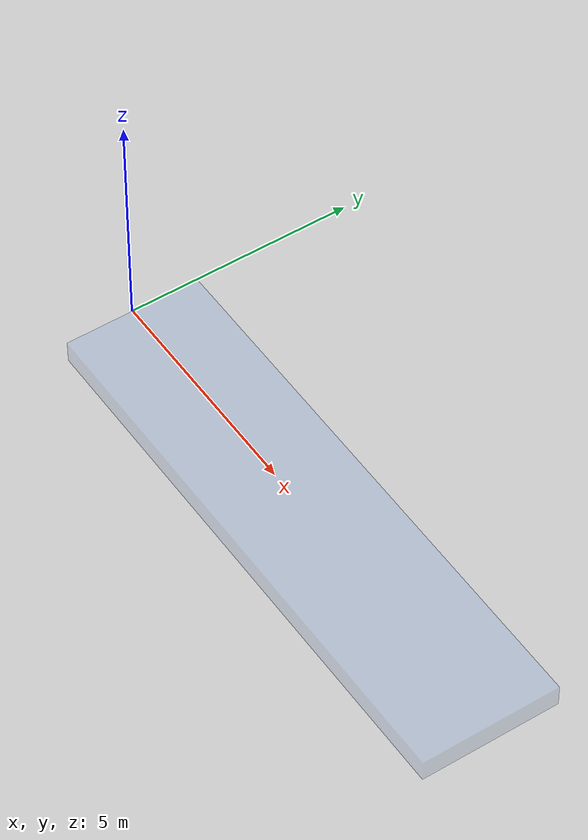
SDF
<?xml version="1.0" ?>
<sdf version="1.6">
  <world name="world">
    <model name="arena_water">
      <pose>0 0 0 0 0 0</pose>
      <link name="water">
        <pose>0 0 0 0 0 0</pose>
        <visual name="water_visual">
          <pose>6.0 0.0 -0.25 0 0 0</pose>
          <geometry>
            <box>
              <size>12.0 3.0 0.5</size>
            </box>
          </geometry>
          <material>
            <ambient>0.25 0.45 0.75 0.0500</ambient>
            <diffuse>0.30 0.50 0.80 0.0500</diffuse>
            <specular>0.60 0.60 0.65 0.0500</specular>
            <emissive>0.05 0.08 0.15 0.0500</emissive>
          </material>
        </visual>
      </link>
    </model>
  </world>
</sdf>
